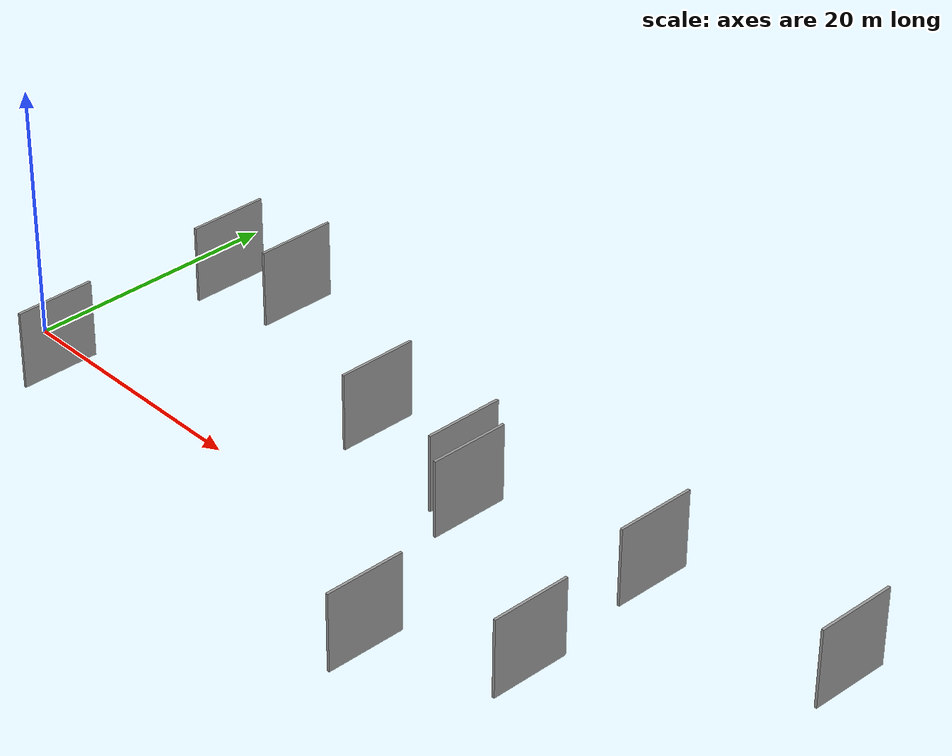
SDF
<sdf version="1.6">
 <world name="default">
  <scene>
   <sky><clouds><speed>12</speed></clouds></sky>
   <ambient>0.4 0.4 0.4 1</ambient>
   <background>0.7 0.7 0.7 1</background>
   <shadows>1</shadows>
  </scene>
  <gravity>0 0 -9.8066</gravity>
  <magnetic_field>6e-06 2.3e-05 -4.2e-05</magnetic_field>
  <physics default="0" name="default_physics" type="ode">
   <ode>
    <solver>
     <type>quick</type>
     <iters>10</iters>
     <sor>1.0</sor>
     <use_dynamic_moi_rescaling>0</use_dynamic_moi_rescaling>
    </solver>
    <constraints>
     <cfm>0</cfm>
     <erp>0.2</erp>
     <contact_max_correcting_vel>100</contact_max_correcting_vel>
     <contact_surface_layer>0.001</contact_surface_layer>
    </constraints>
   </ode>
   <max_step_size>0.004</max_step_size>
   <real_time_factor>1</real_time_factor>
   <real_time_update_rate>250</real_time_update_rate>
  </physics>
  <light name="sun" type="directional">
   <pose>0 0 10 0 0 0</pose>
   <diffuse>0.8 0.8 0.8 1</diffuse>
   <specular>0.2 0.2 0.2 1</specular>
   <attenuation>
    <range>1000</range>
    <constant>0.9</constant>
    <linear>0.01</linear>
    <quadratic>0.001</quadratic>
   </attenuation>
   <direction>-0.5 0.1 -0.9</direction>
  </light>
  <model name="grey_wall_1">
   <static>1</static>
   <pose>16.0347 10.6912 5.0 0.000000 0.000000 1.570796</pose>
   <link name="link">
    <pose>0 0 3.00 0 0 0</pose>
    <collision name="collision"><geometry><box><size>6.00 0.2 6.00</size></box></geometry></collision>
    <visual name="visual">
     <cast_shadows>0</cast_shadows>
     <geometry><box><size>6.00 0.2 6.00</size></box></geometry>
     <material>
      <script>
       <uri>model://grey_wall/materials/scripts</uri>
       <uri>model://grey_wall/materials/textures</uri>
       <name>vrc/grey_wall</name>
      </script>
     </material>
    </visual>
   </link>
  </model>
  <model name="grey_wall_2">
   <static>1</static>
   <pose>54.8240 6.6928 5.0 0.000000 0.000000 1.570796</pose>
   <link name="link">
    <pose>0 0 3.00 0 0 0</pose>
    <collision name="collision"><geometry><box><size>6.00 0.2 6.00</size></box></geometry></collision>
    <visual name="visual">
     <cast_shadows>0</cast_shadows>
     <geometry><box><size>6.00 0.2 6.00</size></box></geometry>
     <material>
      <script>
       <uri>model://grey_wall/materials/scripts</uri>
       <uri>model://grey_wall/materials/textures</uri>
       <name>vrc/grey_wall</name>
      </script>
     </material>
    </visual>
   </link>
  </model>
  <model name="grey_wall_3">
   <static>1</static>
   <pose>39.7681 4.5844 5.0 0.000000 0.000000 1.570796</pose>
   <link name="link">
    <pose>0 0 3.00 0 0 0</pose>
    <collision name="collision"><geometry><box><size>6.00 0.2 6.00</size></box></geometry></collision>
    <visual name="visual">
     <cast_shadows>0</cast_shadows>
     <geometry><box><size>6.00 0.2 6.00</size></box></geometry>
     <material>
      <script>
       <uri>model://grey_wall/materials/scripts</uri>
       <uri>model://grey_wall/materials/textures</uri>
       <name>vrc/grey_wall</name>
      </script>
     </material>
    </visual>
   </link>
  </model>
  <model name="grey_wall_4">
   <static>1</static>
   <pose>30.9565 4.9983 5.0 0.000000 0.000000 1.570796</pose>
   <link name="link">
    <pose>0 0 3.00 0 0 0</pose>
    <collision name="collision"><geometry><box><size>6.00 0.2 6.00</size></box></geometry></collision>
    <visual name="visual">
     <cast_shadows>0</cast_shadows>
     <geometry><box><size>6.00 0.2 6.00</size></box></geometry>
     <material>
      <script>
       <uri>model://grey_wall/materials/scripts</uri>
       <uri>model://grey_wall/materials/textures</uri>
       <name>vrc/grey_wall</name>
      </script>
     </material>
    </visual>
   </link>
  </model>
  <model name="grey_wall_5">
   <static>1</static>
   <pose>47.4233 -10.7059 5.0 0.000000 0.000000 1.570796</pose>
   <link name="link">
    <pose>0 0 3.00 0 0 0</pose>
    <collision name="collision"><geometry><box><size>6.00 0.2 6.00</size></box></geometry></collision>
    <visual name="visual">
     <cast_shadows>0</cast_shadows>
     <geometry><box><size>6.00 0.2 6.00</size></box></geometry>
     <material>
      <script>
       <uri>model://grey_wall/materials/scripts</uri>
       <uri>model://grey_wall/materials/textures</uri>
       <name>vrc/grey_wall</name>
      </script>
     </material>
    </visual>
   </link>
  </model>
  <model name="grey_wall_6">
   <static>1</static>
   <pose>55.9012 -5.0242 5.0 0.000000 0.000000 1.570796</pose>
   <link name="link">
    <pose>0 0 3.00 0 0 0</pose>
    <collision name="collision"><geometry><box><size>6.00 0.2 6.00</size></box></geometry></collision>
    <visual name="visual">
     <cast_shadows>0</cast_shadows>
     <geometry><box><size>6.00 0.2 6.00</size></box></geometry>
     <material>
      <script>
       <uri>model://grey_wall/materials/scripts</uri>
       <uri>model://grey_wall/materials/textures</uri>
       <name>vrc/grey_wall</name>
      </script>
     </material>
    </visual>
   </link>
  </model>
  <model name="grey_wall_7">
   <static>1</static>
   <pose>10.3776 9.2302 5.0 0.000000 0.000000 1.570796</pose>
   <link name="link">
    <pose>0 0 3.00 0 0 0</pose>
    <collision name="collision"><geometry><box><size>6.00 0.2 6.00</size></box></geometry></collision>
    <visual name="visual">
     <cast_shadows>0</cast_shadows>
     <geometry><box><size>6.00 0.2 6.00</size></box></geometry>
     <material>
      <script>
       <uri>model://grey_wall/materials/scripts</uri>
       <uri>model://grey_wall/materials/textures</uri>
       <name>vrc/grey_wall</name>
      </script>
     </material>
    </visual>
   </link>
  </model>
  <model name="grey_wall_8">
   <static>1</static>
   <pose>41.9930 2.9953 5.0 0.000000 0.000000 1.570796</pose>
   <link name="link">
    <pose>0 0 3.00 0 0 0</pose>
    <collision name="collision"><geometry><box><size>6.00 0.2 6.00</size></box></geometry></collision>
    <visual name="visual">
     <cast_shadows>0</cast_shadows>
     <geometry><box><size>6.00 0.2 6.00</size></box></geometry>
     <material>
      <script>
       <uri>model://grey_wall/materials/scripts</uri>
       <uri>model://grey_wall/materials/textures</uri>
       <name>vrc/grey_wall</name>
      </script>
     </material>
    </visual>
   </link>
  </model>
  <model name="grey_wall_9">
   <static>1</static>
   <pose>10.7876 -6.3139 5.0 0.000000 0.000000 1.570796</pose>
   <link name="link">
    <pose>0 0 3.00 0 0 0</pose>
    <collision name="collision"><geometry><box><size>6.00 0.2 6.00</size></box></geometry></collision>
    <visual name="visual">
     <cast_shadows>0</cast_shadows>
     <geometry><box><size>6.00 0.2 6.00</size></box></geometry>
     <material>
      <script>
       <uri>model://grey_wall/materials/scripts</uri>
       <uri>model://grey_wall/materials/textures</uri>
       <name>vrc/grey_wall</name>
      </script>
     </material>
    </visual>
   </link>
  </model>
  <model name="grey_wall_10">
   <static>1</static>
   <pose>69.5166 8.5056 5.0 0.000000 0.000000 1.570796</pose>
   <link name="link">
    <pose>0 0 3.00 0 0 0</pose>
    <collision name="collision"><geometry><box><size>6.00 0.2 6.00</size></box></geometry></collision>
    <visual name="visual">
     <cast_shadows>0</cast_shadows>
     <geometry><box><size>6.00 0.2 6.00</size></box></geometry>
     <material>
      <script>
       <uri>model://grey_wall/materials/scripts</uri>
       <uri>model://grey_wall/materials/textures</uri>
       <name>vrc/grey_wall</name>
      </script>
     </material>
    </visual>
   </link>
  </model>
 </world>
</sdf>
